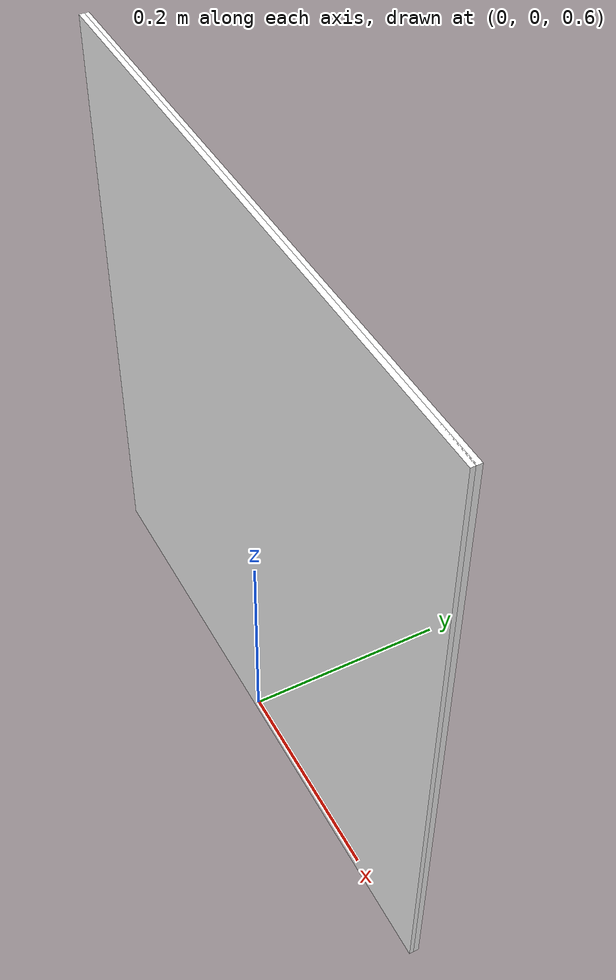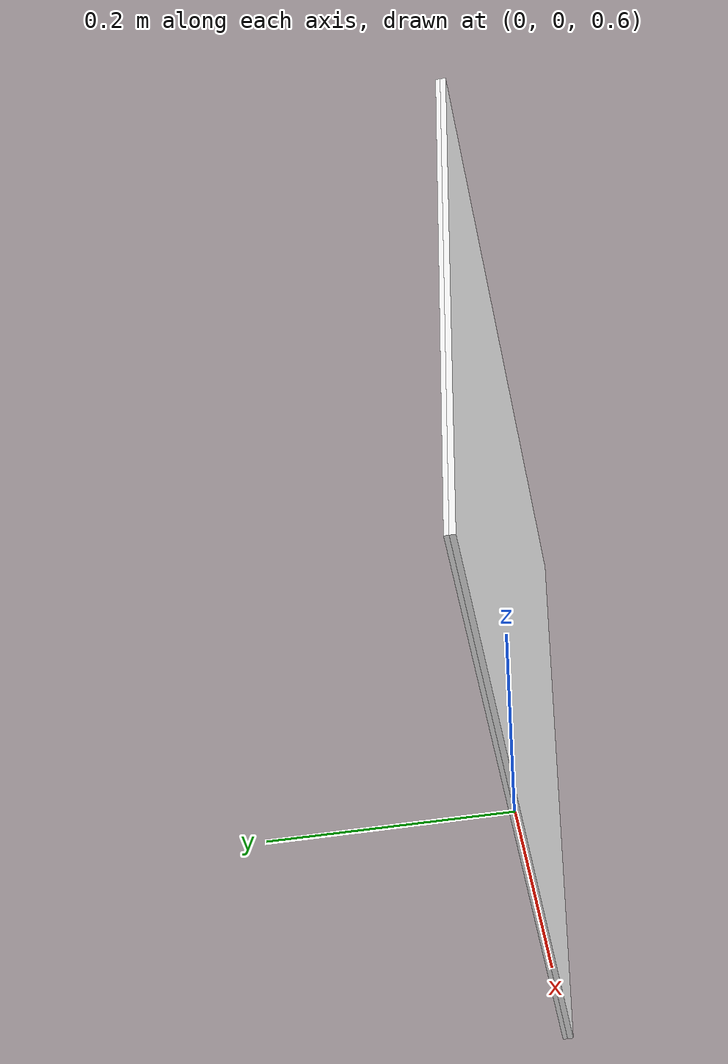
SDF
<?xml version='1.0'?>
<sdf version='1.7'>
  <model name='Hospital_sign_board_2'>

    <light type="directional" name="my_light_front">
        <pose>0 1.5 1.6 0 0 0</pose>
        <diffuse>5.0 5.0 5.0 1</diffuse>
        <specular>0.5 0.5 0.5 1</specular>
        <attenuation>
            <range>10</range>
            <constant>1.0</constant>
            <linear>0.0</linear>
            <quadratic>0.0</quadratic>
        </attenuation>
        <direction>0 -1 0</direction>
        <cast_shadows>false</cast_shadows>
    </light>

    <light type="directional" name="my_light_back">
        <pose>0 -1.5 1.6 0 0 0</pose>
        <diffuse>5.0 5.0 5.0 1</diffuse>
        <specular>0.5 0.5 0.5 1</specular>
        <attenuation>
            <range>10</range>
            <constant>1.0</constant>
            <linear>0.0</linear>
            <quadratic>0.0</quadratic>
        </attenuation>
        <direction>0 1 0</direction>
        <cast_shadows>false</cast_shadows>
    </light>

    <link name='link_front'>
      <pose>0 -0.002 0.9 0 0 0</pose>
      <visual name='visual'>
        <geometry>
          <box>
            <size>0.6 0.005 0.6</size> </box>
        </geometry>
        <material>
          <diffuse>1.0 1.0 1.0</diffuse>
          <specular>1.0 1.0 1.0</specular>
          <pbr>
            <metal>
              <albedo_map>materials/textures/qr_code_h2.png</albedo_map>
              <emissive_map>materials/textures/qr_code_h2.png</emissive_map>
            </metal>
          </pbr>
          <shader type='pixel'/>
        </material>
        <transparency>0</transparency>
        <cast_shadows>0</cast_shadows>
      </visual>
    </link>

    <link name='link_back'>
      <pose>0 0.002 0.9 0 0 0</pose>
      <visual name='visual'>
        <geometry>
          <box>
            <size>0.6 0.005 0.6</size>
          </box>
        </geometry>
        <material>
          <diffuse>1.0 1.0 1.0</diffuse>
          <specular>1.0 1.0 1.0</specular>
          <pbr>
            <metal>
              <albedo_map>materials/textures/qr_code_h2.png</albedo_map>
              <emissive_map>materials/textures/qr_code_h2.png</emissive_map>
            </metal>
          </pbr>
          <shader type='pixel'/>
        </material>
        <transparency>0</transparency>
        <cast_shadows>0</cast_shadows>
      </visual>
    </link>

    <static>1</static>
  </model>
</sdf>
